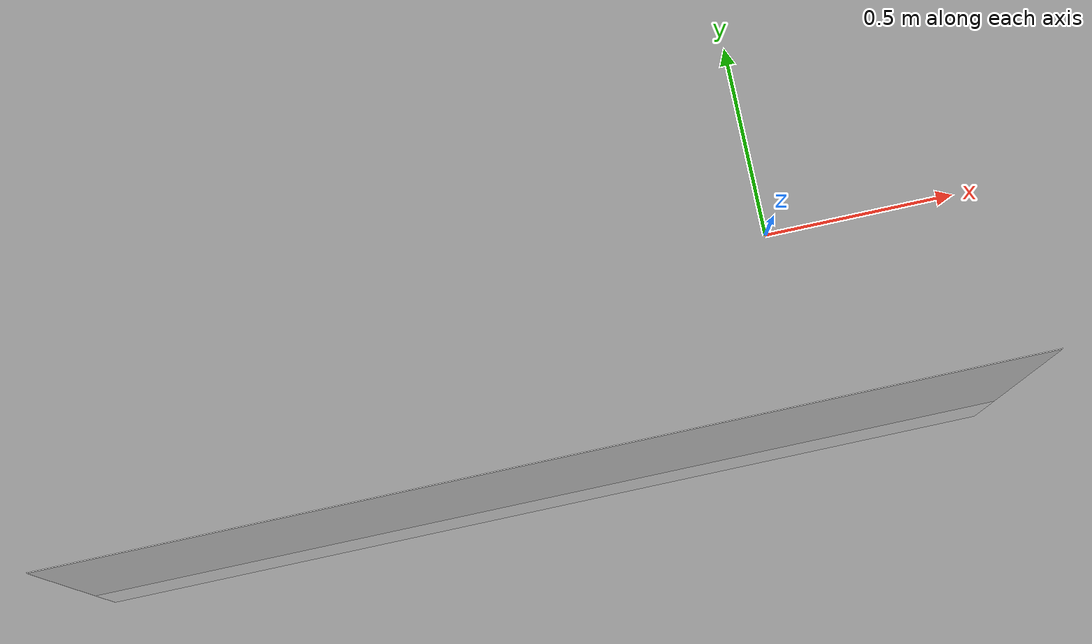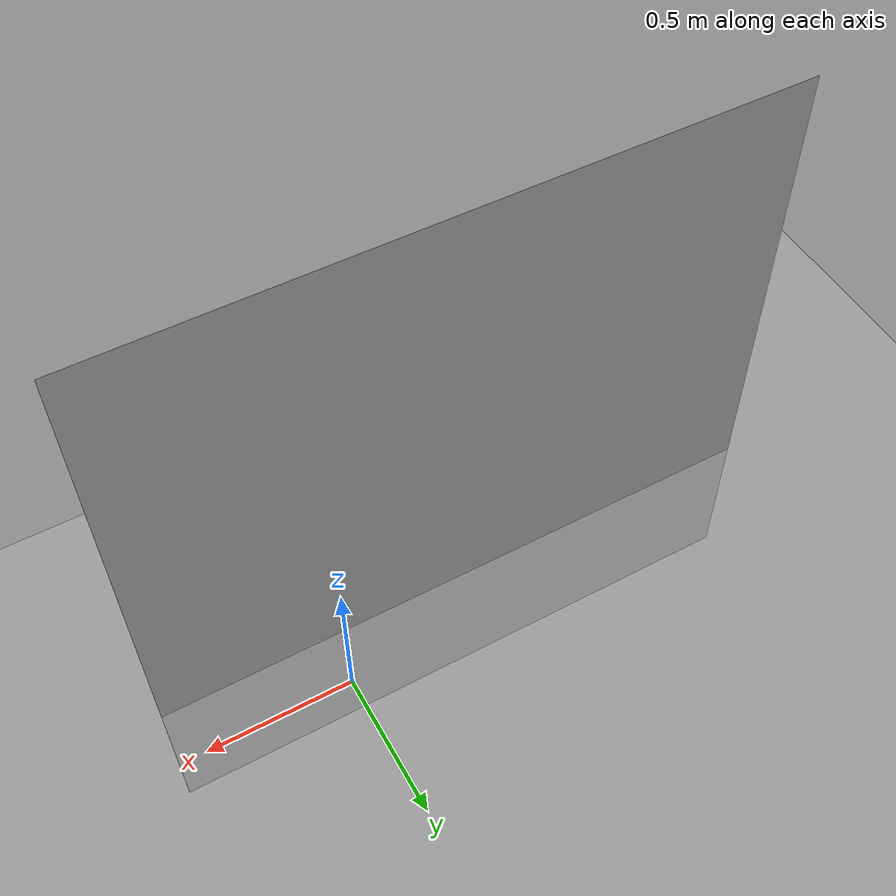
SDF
<?xml version="1.0"?>
<sdf version="1.6" xmlns:xacro="http://ros.org/wiki/xacro">
    <world name="empty">
        <physics name="1ms" type="ignored">
            <max_step_size>0.001</max_step_size>
            <real_time_factor>1.0</real_time_factor>
        </physics>
        <plugin
            filename="gz-sim-physics-system"
            name="gz::sim::systems::Physics">
        </plugin>
        <plugin
            filename="gz-sim-user-commands-system"
            name="gz::sim::systems::UserCommands">
        </plugin>
        <plugin
            filename="gz-sim-scene-broadcaster-system"
            name="gz::sim::systems::SceneBroadcaster">
        </plugin>
        <plugin
            filename="gz-sim-contact-system"
            name="gz::sim::systems::Contact">
        </plugin>
        <plugin
            filename="gz-sim-sensors-system"
            name="gz::sim::systems::Sensors">
            <render_engine>ogre2</render_engine>
        </plugin>
        <plugin
            filename="gz-sim-imu-system"
            name="gz::sim::systems::Imu">
        </plugin>

        <plugin name='gz::sim::systems::Contact' filename='gz-sim-contact-system' />

        <light type="directional" name="sun">
            <cast_shadows>false</cast_shadows>
            <pose>0 0 10 0 0 0</pose>
            <diffuse>0.8 0.8 0.8 1</diffuse>
            <specular>0.2 0.2 0.2 1</specular>
            <attenuation>
                <range>1000</range>
                <constant>0.9</constant>
                <linear>0.01</linear>
                <quadratic>0.001</quadratic>
            </attenuation>
            <direction>-0.5 0.1 -0.9</direction>
        </light>

        <model name="ground_plane">
            <static>true</static>
            <pose>0 0 -0.6 0 0 0</pose>
            <link name="link">
                <collision name="collision">
                    <geometry>
                        <plane>
                            <normal>0 0 1</normal>
                            <size>100 100</size>
                        </plane>
                    </geometry>
                </collision>
                <visual name="visual">
                    <geometry>
                        <plane>
                            <normal>0 0 1</normal>
                            <size>100 100</size>
                        </plane>
                    </geometry>
                    <material>
                        <ambient>0.8 0.8 0.8 1</ambient>
                        <diffuse>0.8 0.8 0.8 1</diffuse>
                        <specular>0.8 0.8 0.8 1</specular>
                    </material>
                </visual>
            </link>
        </model>

        <model name="brick_joints_plane">
            <static>true</static>
            <pose> -0.7 -0.52 0.0 0 0 0</pose>
            <link name="link">
                <collision name="collision">
                    <geometry>
                        <plane>
                            <normal>0 1 0</normal>
                            <size>2.5 2.5</size>
                        </plane>
                    </geometry>
                </collision>
                <visual name="visual">
                    <geometry>
                        <plane>
                            <normal>0 1 0</normal>
                            <size>2.5 2.5</size>
                        </plane>
                    </geometry>
                    <material>
                        <ambient>0.7 0.7 0.7 1.0</ambient>
                        <diffuse>0.8 0.8 0.8 1.0</diffuse>
                        <specular>0.6 0.6 0.6 1.0</specular>
                        <emissive>0.1 0.1 0.1 1.0</emissive>
                    </material>
                </visual>
            </link>
        </model>

    </world>
</sdf>
